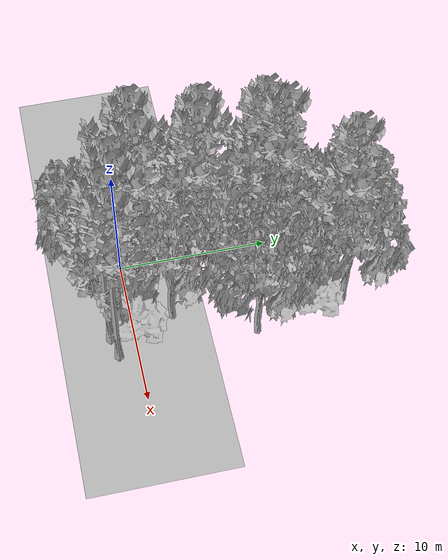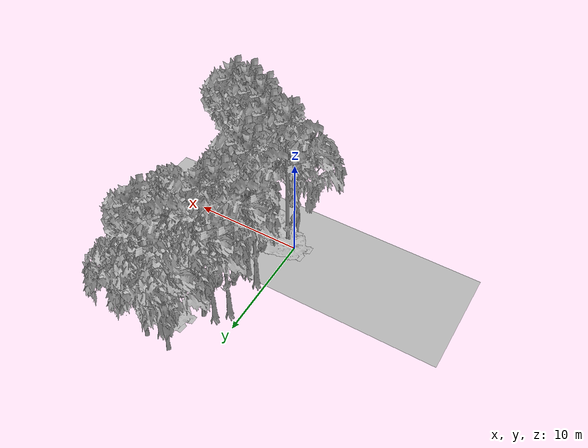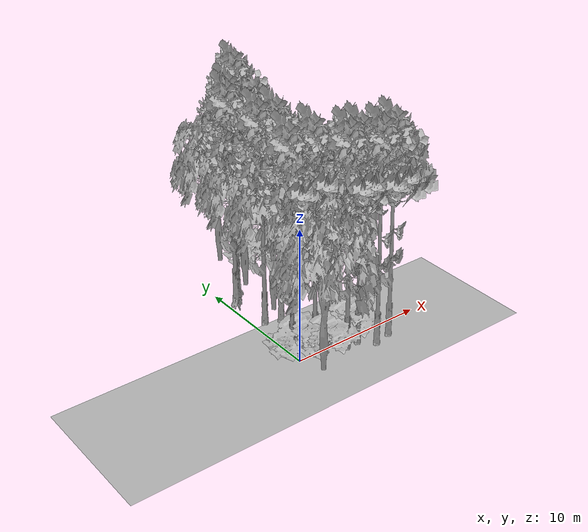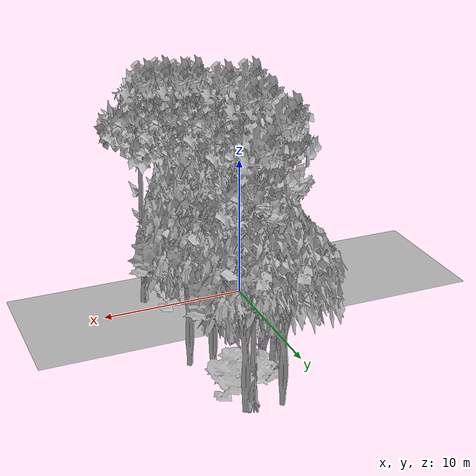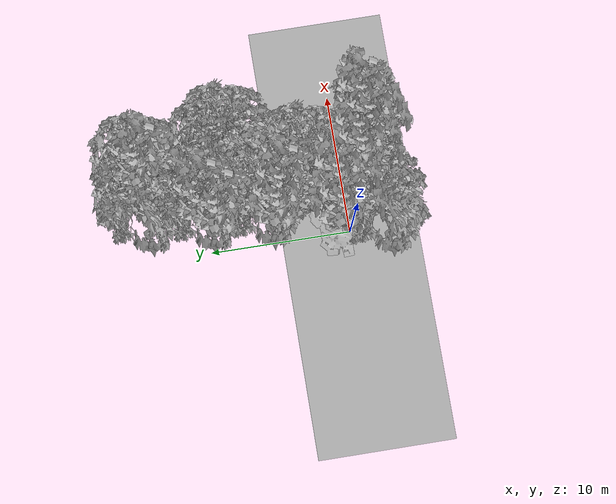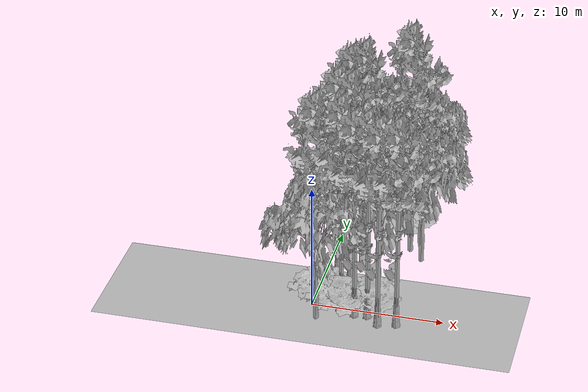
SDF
<sdf version="1.7">
 <world name="default">
  <model name="ground_plane">
   <static>1</static>
   <link name="link">
    <collision name="collision">
     <pose>-50 0 0 0 -0 0</pose>
     <geometry><plane><normal>0 0 1</normal><size>100 100</size></plane></geometry>
     <surface><contact><ode><min_depth>0.01</min_depth><max_vel>0</max_vel></ode></contact></surface>
    </collision>
    <visual name="grass">
     <cast_shadows>0</cast_shadows>
     <geometry>
      <mesh>
       <scale>0.5814285714285714 0.18142857142857144 0.1</scale>
       <uri>file://grass_plane/meshes/grass_plane.dae</uri>
      </mesh>
     </geometry>
    </visual>
   </link>
  </model>
  <model name="Tree 7">
   <static>1</static>
   <pose>0.12277957769375547 0.9770793056603875 0 1.57079 -0 0</pose>
   <link name="link">
    <collision name="collision">
     <geometry><mesh><scale>3.5 5 3.5</scale><uri>model://tree_9/meshes/tree_9.obj</uri></mesh></geometry>
    </collision>
    <visual name="visual">
     <geometry><mesh><scale>3.5 5 3.5</scale><uri>model://tree_9/meshes/tree_9.obj</uri></mesh></geometry>
    </visual>
   </link>
  </model>
  <model name="Tree 15">
   <static>1</static>
   <pose>4.864281417624234 11.829364958286991 0 1.57079 -0 0</pose>
   <link name="link">
    <collision name="collision">
     <geometry><mesh><scale>3 2 3</scale><uri>model://tree_3/meshes/tree_3.obj</uri></mesh></geometry>
    </collision>
    <visual name="visual">
     <geometry><mesh><scale>3 2 3</scale><uri>model://tree_3/meshes/tree_3.obj</uri></mesh></geometry>
    </visual>
   </link>
  </model>
  <model name="Tree 16">
   <static>1</static>
   <pose>1.9173290882321297 4.595612112184778 0 1.57079 -0 0</pose>
   <link name="link">
    <collision name="collision">
     <geometry><mesh><scale>3.5 5 3.5</scale><uri>model://tree_9/meshes/tree_9.obj</uri></mesh></geometry>
    </collision>
    <visual name="visual">
     <geometry><mesh><scale>3.5 5 3.5</scale><uri>model://tree_9/meshes/tree_9.obj</uri></mesh></geometry>
    </visual>
   </link>
  </model>
  <model name="Tree 18">
   <static>1</static>
   <pose>1.0117634029539886 8.809571183129197 0 1.57079 -0 0</pose>
   <link name="link">
    <collision name="collision">
     <geometry><mesh><scale>3.5 5 3.5</scale><uri>model://tree_9/meshes/tree_9.obj</uri></mesh></geometry>
    </collision>
    <visual name="visual">
     <geometry><mesh><scale>3.5 5 3.5</scale><uri>model://tree_9/meshes/tree_9.obj</uri></mesh></geometry>
    </visual>
   </link>
  </model>
  <model name="Tree 78">
   <static>1</static>
   <pose>6.620773681502293 7.8623402345590065 0 1.57079 -0 0</pose>
   <link name="link">
    <collision name="collision">
     <geometry><mesh><scale>3.5 5 3.5</scale><uri>model://tree_2/meshes/tree_2.obj</uri></mesh></geometry>
    </collision>
    <visual name="visual">
     <geometry><mesh><scale>3.5 5 3.5</scale><uri>model://tree_2/meshes/tree_2.obj</uri></mesh></geometry>
    </visual>
   </link>
  </model>
  <model name="Tree 140">
   <static>1</static>
   <pose>4.3579196334836965 2.665122723461675 0 1.57079 -0 0</pose>
   <link name="link">
    <collision name="collision">
     <geometry><mesh><scale>3.5 5 3.5</scale><uri>model://tree_2/meshes/tree_2.obj</uri></mesh></geometry>
    </collision>
    <visual name="visual">
     <geometry><mesh><scale>3.5 5 3.5</scale><uri>model://tree_2/meshes/tree_2.obj</uri></mesh></geometry>
    </visual>
   </link>
  </model>
  <model name="Tree 145">
   <static>1</static>
   <pose>3.141341547248544 14.141331494251624 0 1.57079 -0 0</pose>
   <link name="link">
    <collision name="collision">
     <geometry><mesh><scale>3.5 5 3.5</scale><uri>model://tree_2/meshes/tree_2.obj</uri></mesh></geometry>
    </collision>
    <visual name="visual">
     <geometry><mesh><scale>3.5 5 3.5</scale><uri>model://tree_2/meshes/tree_2.obj</uri></mesh></geometry>
    </visual>
   </link>
  </model>
  <model name="Tree 158">
   <static>1</static>
   <pose>1.8216640310502683 9.78561593582035 0 1.57079 -0 0</pose>
   <link name="link">
    <collision name="collision">
     <geometry><mesh><scale>3.5 5 3.5</scale><uri>model://tree_9/meshes/tree_9.obj</uri></mesh></geometry>
    </collision>
    <visual name="visual">
     <geometry><mesh><scale>3.5 5 3.5</scale><uri>model://tree_9/meshes/tree_9.obj</uri></mesh></geometry>
    </visual>
   </link>
  </model>
  <model name="Tree 179">
   <static>1</static>
   <pose>3.431106816773898 -0.7603249315978609 0 1.57079 -0 0</pose>
   <link name="link">
    <collision name="collision">
     <geometry><mesh><scale>3.5 5 3.5</scale><uri>model://tree_9/meshes/tree_9.obj</uri></mesh></geometry>
    </collision>
    <visual name="visual">
     <geometry><mesh><scale>3.5 5 3.5</scale><uri>model://tree_9/meshes/tree_9.obj</uri></mesh></geometry>
    </visual>
   </link>
  </model>
  <model name="Tree 215">
   <static>1</static>
   <pose>6.696970812253284 -1.272394800477933 0 1.57079 -0 0</pose>
   <link name="link">
    <collision name="collision">
     <geometry><mesh><scale>3.5 5 3.5</scale><uri>model://tree_9/meshes/tree_9.obj</uri></mesh></geometry>
    </collision>
    <visual name="visual">
     <geometry><mesh><scale>3.5 5 3.5</scale><uri>model://tree_9/meshes/tree_9.obj</uri></mesh></geometry>
    </visual>
   </link>
  </model>
  <model name="Tree 225">
   <static>1</static>
   <pose>2.040941031326902 -0.3809837579777984 0 1.57079 -0 0</pose>
   <link name="link">
    <collision name="collision">
     <geometry><mesh><scale>3 2 3</scale><uri>model://tree_3/meshes/tree_3.obj</uri></mesh></geometry>
    </collision>
    <visual name="visual">
     <geometry><mesh><scale>3 2 3</scale><uri>model://tree_3/meshes/tree_3.obj</uri></mesh></geometry>
    </visual>
   </link>
  </model>
  <model name="Tree 274">
   <static>1</static>
   <pose>5.52862406218032 9.043424834985537 0 1.57079 -0 0</pose>
   <link name="link">
    <collision name="collision">
     <geometry><mesh><scale>3.5 5 3.5</scale><uri>model://tree_2/meshes/tree_2.obj</uri></mesh></geometry>
    </collision>
    <visual name="visual">
     <geometry><mesh><scale>3.5 5 3.5</scale><uri>model://tree_2/meshes/tree_2.obj</uri></mesh></geometry>
    </visual>
   </link>
  </model>
  <model name="Tree 300">
   <static>1</static>
   <pose>0.8196061333625764 5.013357499462597 0 1.57079 -0 0</pose>
   <link name="link">
    <collision name="collision">
     <geometry><mesh><scale>3.5 5 3.5</scale><uri>model://tree_9/meshes/tree_9.obj</uri></mesh></geometry>
    </collision>
    <visual name="visual">
     <geometry><mesh><scale>3.5 5 3.5</scale><uri>model://tree_9/meshes/tree_9.obj</uri></mesh></geometry>
    </visual>
   </link>
  </model>
  <model name="Tree 314">
   <static>1</static>
   <pose>2.649344588451683 10.063655232584768 0 1.57079 -0 0</pose>
   <link name="link">
    <collision name="collision">
     <geometry><mesh><scale>3.5 5 3.5</scale><uri>model://tree_2/meshes/tree_2.obj</uri></mesh></geometry>
    </collision>
    <visual name="visual">
     <geometry><mesh><scale>3.5 5 3.5</scale><uri>model://tree_2/meshes/tree_2.obj</uri></mesh></geometry>
    </visual>
   </link>
  </model>
  <model name="Tree 327">
   <static>1</static>
   <pose>5.4428704976772195 13.964877507668685 0 1.57079 -0 0</pose>
   <link name="link">
    <collision name="collision">
     <geometry><mesh><scale>3.5 5 3.5</scale><uri>model://tree_2/meshes/tree_2.obj</uri></mesh></geometry>
    </collision>
    <visual name="visual">
     <geometry><mesh><scale>3.5 5 3.5</scale><uri>model://tree_2/meshes/tree_2.obj</uri></mesh></geometry>
    </visual>
   </link>
  </model>
  <model name="Tree 359">
   <static>1</static>
   <pose>0.43821151682103476 0.6747835773738817 0 1.57079 -0 0</pose>
   <link name="link">
    <collision name="collision">
     <geometry><mesh><scale>3 2 3</scale><uri>model://tree_3/meshes/tree_3.obj</uri></mesh></geometry>
    </collision>
    <visual name="visual">
     <geometry><mesh><scale>3 2 3</scale><uri>model://tree_3/meshes/tree_3.obj</uri></mesh></geometry>
    </visual>
   </link>
  </model>
  <model name="Tree 387">
   <static>1</static>
   <pose>5.362386243415848 -1.5840263830295527 0 1.57079 -0 0</pose>
   <link name="link">
    <collision name="collision">
     <geometry><mesh><scale>3.5 5 3.5</scale><uri>model://tree_9/meshes/tree_9.obj</uri></mesh></geometry>
    </collision>
    <visual name="visual">
     <geometry><mesh><scale>3.5 5 3.5</scale><uri>model://tree_9/meshes/tree_9.obj</uri></mesh></geometry>
    </visual>
   </link>
  </model>
  <model name="Tree 391">
   <static>1</static>
   <pose>2.039582005745565 0.9580408004472751 0 1.57079 -0 0</pose>
   <link name="link">
    <collision name="collision">
     <geometry><mesh><scale>3.5 5 3.5</scale><uri>model://tree_9/meshes/tree_9.obj</uri></mesh></geometry>
    </collision>
    <visual name="visual">
     <geometry><mesh><scale>3.5 5 3.5</scale><uri>model://tree_9/meshes/tree_9.obj</uri></mesh></geometry>
    </visual>
   </link>
  </model>
  <model name="Tree 395">
   <static>1</static>
   <pose>4.714661578618923 13.220572310962464 0 1.57079 -0 0</pose>
   <link name="link">
    <collision name="collision">
     <geometry><mesh><scale>3.5 5 3.5</scale><uri>model://tree_9/meshes/tree_9.obj</uri></mesh></geometry>
    </collision>
    <visual name="visual">
     <geometry><mesh><scale>3.5 5 3.5</scale><uri>model://tree_9/meshes/tree_9.obj</uri></mesh></geometry>
    </visual>
   </link>
  </model>
  <model name="Tree 407">
   <static>1</static>
   <pose>4.357989216864851 0.17562971455555498 0 1.57079 -0 0</pose>
   <link name="link">
    <collision name="collision">
     <geometry><mesh><scale>3 2 3</scale><uri>model://tree_3/meshes/tree_3.obj</uri></mesh></geometry>
    </collision>
    <visual name="visual">
     <geometry><mesh><scale>3 2 3</scale><uri>model://tree_3/meshes/tree_3.obj</uri></mesh></geometry>
    </visual>
   </link>
  </model>
  <model name="Tree 474">
   <static>1</static>
   <pose>4.397889301289069 -0.7126191013744769 0 1.57079 -0 0</pose>
   <link name="link">
    <collision name="collision">
     <geometry><mesh><scale>3.5 5 3.5</scale><uri>model://tree_9/meshes/tree_9.obj</uri></mesh></geometry>
    </collision>
    <visual name="visual">
     <geometry><mesh><scale>3.5 5 3.5</scale><uri>model://tree_9/meshes/tree_9.obj</uri></mesh></geometry>
    </visual>
   </link>
  </model>
  <model name="Tree 491">
   <static>1</static>
   <pose>0.625804224791338 -1.6252759158612733 0 1.57079 -0 0</pose>
   <link name="link">
    <collision name="collision">
     <geometry><mesh><scale>3.5 5 3.5</scale><uri>model://tree_2/meshes/tree_2.obj</uri></mesh></geometry>
    </collision>
    <visual name="visual">
     <geometry><mesh><scale>3.5 5 3.5</scale><uri>model://tree_2/meshes/tree_2.obj</uri></mesh></geometry>
    </visual>
   </link>
  </model>
  <model name="Tree 508">
   <static>1</static>
   <pose>2.317344130995444 6.114086878279942 0 1.57079 -0 0</pose>
   <link name="link">
    <collision name="collision">
     <geometry><mesh><scale>3.5 5 3.5</scale><uri>model://tree_2/meshes/tree_2.obj</uri></mesh></geometry>
    </collision>
    <visual name="visual">
     <geometry><mesh><scale>3.5 5 3.5</scale><uri>model://tree_2/meshes/tree_2.obj</uri></mesh></geometry>
    </visual>
   </link>
  </model>
 </world>
</sdf>
